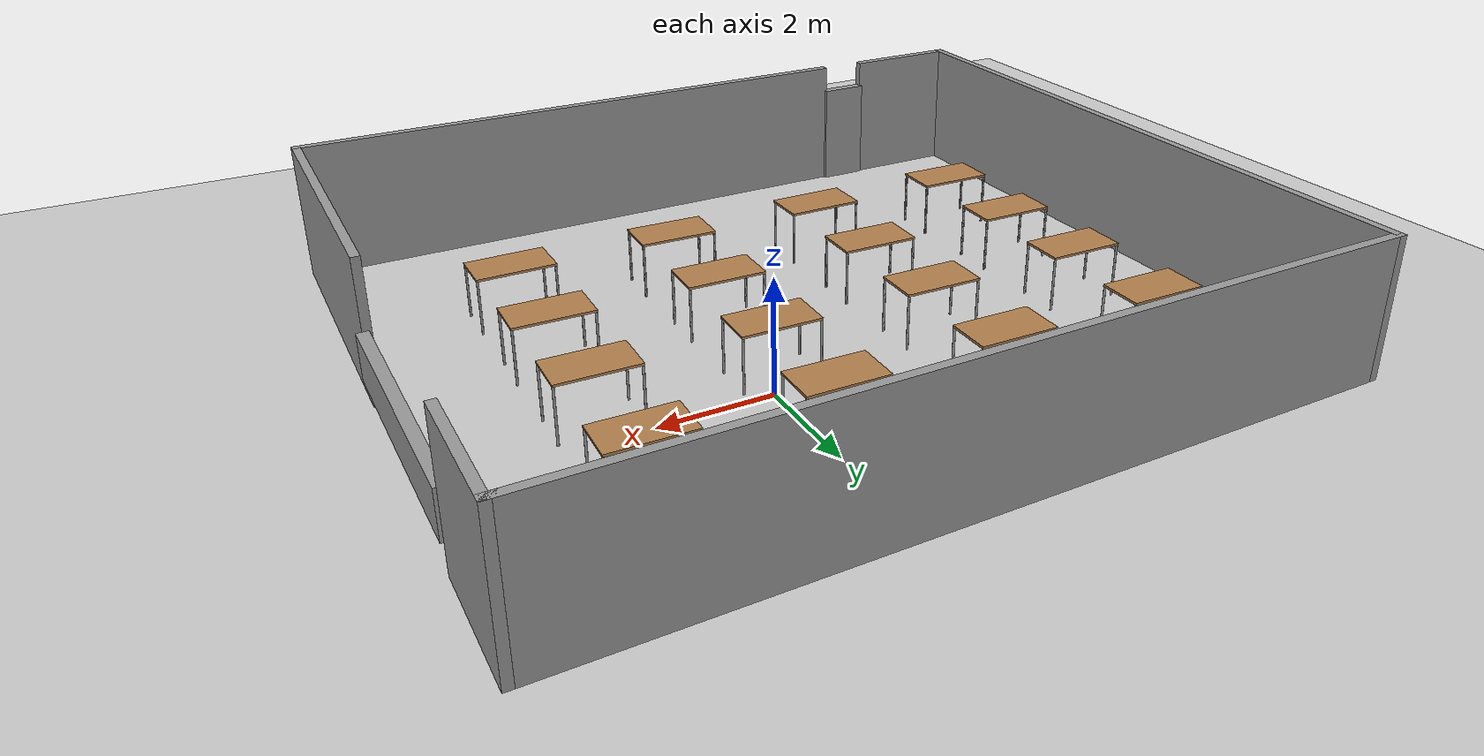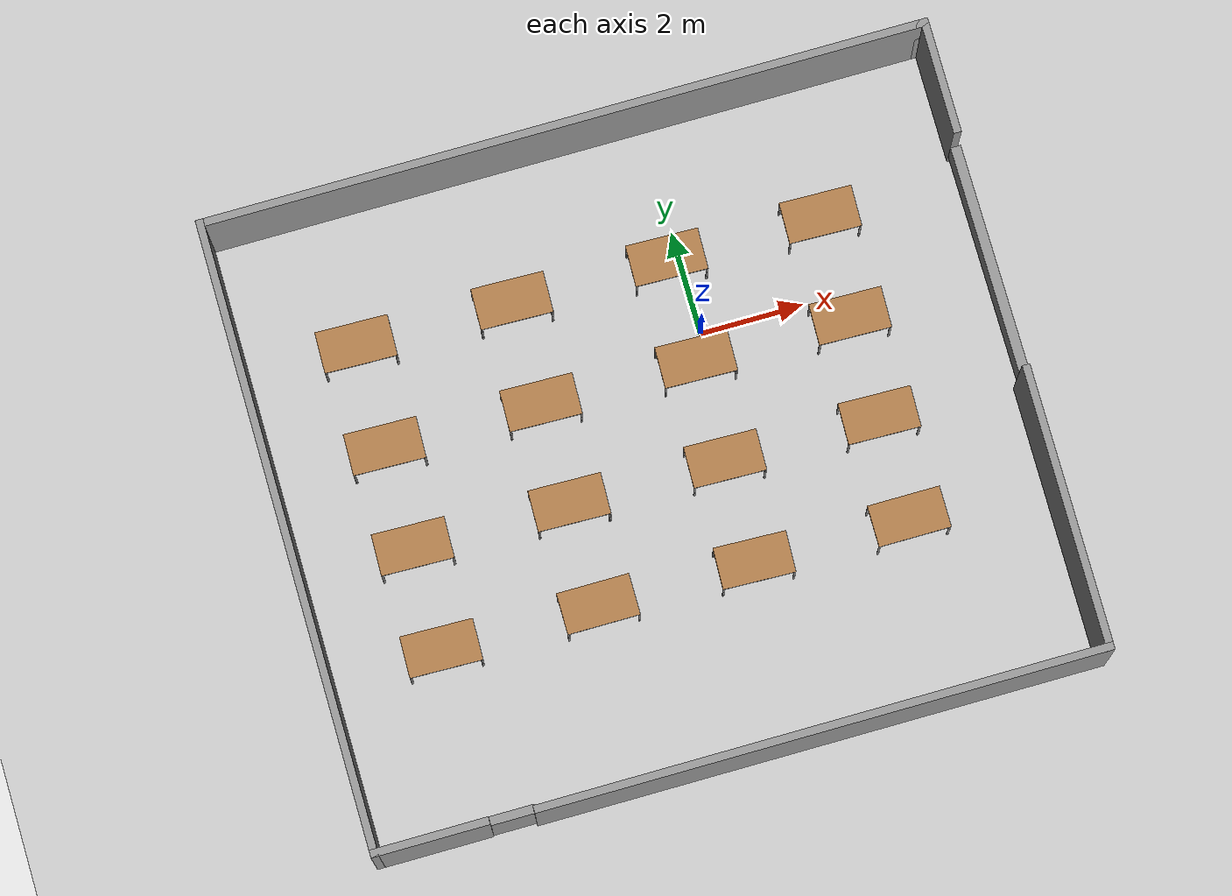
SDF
<sdf version="1.6">
 <world name="default">
  <model name="ground_plane">
   <static>1</static>
   <link name="link">
    <collision name="collision">
     <geometry><plane><normal>0 0 1</normal><size>100 100</size></plane></geometry>
     <surface><friction><ode><mu>100</mu><mu2>50</mu2></ode></friction></surface>
    </collision>
    <visual name="visual">
     <cast_shadows>0</cast_shadows>
     <geometry><plane><normal>0 0 1</normal><size>100 100</size></plane></geometry>
     <material>
      <script><uri>file://media/materials/scripts/gazebo.material</uri><name>Gazebo/Grey</name></script>
     </material>
    </visual>
   </link>
  </model>
  <light name="sun" type="directional">
   <pose>0 0 10 0 -0 0</pose>
   <diffuse>0.8 0.8 0.8 1</diffuse>
   <specular>0.1 0.1 0.1 1</specular>
   <attenuation>
    <range>1000</range>
    <constant>0.9</constant>
    <linear>0.01</linear>
    <quadratic>0.001</quadratic>
   </attenuation>
   <direction>-0.5 0.5 -1</direction>
  </light>
  <gravity>0 0 -9.8</gravity>
  <magnetic_field>6e-06 2.3e-05 -4.2e-05</magnetic_field>
  <atmosphere type="adiabatic"/>
  <physics name="default_physics" default="0" type="ode">
   <max_step_size>0.001</max_step_size>
   <real_time_factor>1</real_time_factor>
   <real_time_update_rate>1000</real_time_update_rate>
  </physics>
  <scene><ambient>0.4 0.4 0.4 1</ambient><background>0.7 0.7 0.7 1</background><shadows>1</shadows></scene>
  <spherical_coordinates>
   <surface_model>EARTH_WGS84</surface_model>
   <latitude_deg>0</latitude_deg>
   <longitude_deg>0</longitude_deg>
   <elevation>0</elevation>
   <heading_deg>0</heading_deg>
  </spherical_coordinates>
  <model name="table">
   <static>0</static>
   <link name="link">
    <collision name="surface">
     <pose>0 0 1 0 -0 0</pose>
     <geometry><box><size>1.5 0.8 0.03</size></box></geometry>
     <surface><friction><ode><mu>0.6</mu><mu2>0.6</mu2></ode></friction></surface>
    </collision>
    <visual name="visual1">
     <pose>0 0 1 0 -0 0</pose>
     <geometry><box><size>1.4 0.8 0.04</size></box></geometry>
     <material>
      <script><uri>file://media/materials/scripts/gazebo.material</uri><name>Gazebo/Wood</name></script>
     </material>
    </visual>
    <collision name="front_left_leg">
     <pose>0.68 0.38 0.5 0 -0 0</pose>
     <geometry><cylinder><radius>0.02</radius><length>1</length></cylinder></geometry>
    </collision>
    <visual name="front_left_leg">
     <pose>0.68 0.38 0.5 0 -0 0</pose>
     <geometry><cylinder><radius>0.02</radius><length>1</length></cylinder></geometry>
     <material>
      <script><uri>file://media/materials/scripts/gazebo.material</uri><name>Gazebo/Grey</name></script>
     </material>
    </visual>
    <collision name="front_right_leg">
     <pose>0.68 -0.38 0.5 0 -0 0</pose>
     <geometry><cylinder><radius>0.02</radius><length>1</length></cylinder></geometry>
    </collision>
    <visual name="front_right_leg">
     <pose>0.68 -0.38 0.5 0 -0 0</pose>
     <geometry><cylinder><radius>0.02</radius><length>1</length></cylinder></geometry>
     <material>
      <script><uri>file://media/materials/scripts/gazebo.material</uri><name>Gazebo/Grey</name></script>
     </material>
    </visual>
    <collision name="back_right_leg">
     <pose>-0.68 -0.38 0.5 0 -0 0</pose>
     <geometry><cylinder><radius>0.02</radius><length>1</length></cylinder></geometry>
    </collision>
    <visual name="back_right_leg">
     <pose>-0.68 -0.38 0.5 0 -0 0</pose>
     <geometry><cylinder><radius>0.02</radius><length>1</length></cylinder></geometry>
     <material>
      <script><uri>file://media/materials/scripts/gazebo.material</uri><name>Gazebo/Grey</name></script>
     </material>
    </visual>
    <collision name="back_left_leg">
     <pose>-0.68 0.38 0.5 0 -0 0</pose>
     <geometry><cylinder><radius>0.02</radius><length>1</length></cylinder></geometry>
    </collision>
    <visual name="back_left_leg">
     <pose>-0.68 0.38 0.5 0 -0 0</pose>
     <geometry><cylinder><radius>0.02</radius><length>1</length></cylinder></geometry>
     <material>
      <script><uri>file://media/materials/scripts/gazebo.material</uri><name>Gazebo/Grey</name></script>
     </material>
    </visual>
    <inertial>
     <inertia><ixx>1</ixx><ixy>0</ixy><ixz>0</ixz><iyy>1</iyy><iyz>0</iyz><izz>1</izz></inertia>
     <mass>1</mass>
    </inertial>
   </link>
   <pose>-6.3076 -4.55404 -1e-06 -0 1e-06 -0.023937</pose>
  </model>
  <model name="table_clone">
   <static>0</static>
   <link name="link">
    <collision name="surface">
     <pose>0 0 1 0 -0 0</pose>
     <geometry><box><size>1.5 0.8 0.03</size></box></geometry>
     <surface><friction><ode><mu>0.6</mu><mu2>0.6</mu2></ode></friction></surface>
    </collision>
    <visual name="visual1">
     <pose>0 0 1 0 -0 0</pose>
     <geometry><box><size>1.4 0.8 0.04</size></box></geometry>
     <material>
      <script><uri>file://media/materials/scripts/gazebo.material</uri><name>Gazebo/Wood</name></script>
     </material>
    </visual>
    <collision name="front_left_leg">
     <pose>0.68 0.38 0.5 0 -0 0</pose>
     <geometry><cylinder><radius>0.02</radius><length>1</length></cylinder></geometry>
    </collision>
    <visual name="front_left_leg">
     <pose>0.68 0.38 0.5 0 -0 0</pose>
     <geometry><cylinder><radius>0.02</radius><length>1</length></cylinder></geometry>
     <material>
      <script><uri>file://media/materials/scripts/gazebo.material</uri><name>Gazebo/Grey</name></script>
     </material>
    </visual>
    <collision name="front_right_leg">
     <pose>0.68 -0.38 0.5 0 -0 0</pose>
     <geometry><cylinder><radius>0.02</radius><length>1</length></cylinder></geometry>
    </collision>
    <visual name="front_right_leg">
     <pose>0.68 -0.38 0.5 0 -0 0</pose>
     <geometry><cylinder><radius>0.02</radius><length>1</length></cylinder></geometry>
     <material>
      <script><uri>file://media/materials/scripts/gazebo.material</uri><name>Gazebo/Grey</name></script>
     </material>
    </visual>
    <collision name="back_right_leg">
     <pose>-0.68 -0.38 0.5 0 -0 0</pose>
     <geometry><cylinder><radius>0.02</radius><length>1</length></cylinder></geometry>
    </collision>
    <visual name="back_right_leg">
     <pose>-0.68 -0.38 0.5 0 -0 0</pose>
     <geometry><cylinder><radius>0.02</radius><length>1</length></cylinder></geometry>
     <material>
      <script><uri>file://media/materials/scripts/gazebo.material</uri><name>Gazebo/Grey</name></script>
     </material>
    </visual>
    <collision name="back_left_leg">
     <pose>-0.68 0.38 0.5 0 -0 0</pose>
     <geometry><cylinder><radius>0.02</radius><length>1</length></cylinder></geometry>
    </collision>
    <visual name="back_left_leg">
     <pose>-0.68 0.38 0.5 0 -0 0</pose>
     <geometry><cylinder><radius>0.02</radius><length>1</length></cylinder></geometry>
     <material>
      <script><uri>file://media/materials/scripts/gazebo.material</uri><name>Gazebo/Grey</name></script>
     </material>
    </visual>
    <inertial>
     <inertia><ixx>1</ixx><ixy>0</ixy><ixz>0</ixz><iyy>1</iyy><iyz>0</iyz><izz>1</izz></inertia>
     <mass>1</mass>
    </inertial>
   </link>
   <pose>-3.28473 -4.55404 -1e-06 0 1e-06 0</pose>
  </model>
  <model name="table_clone_0">
   <static>0</static>
   <link name="link">
    <collision name="surface">
     <pose>0 0 1 0 -0 0</pose>
     <geometry><box><size>1.5 0.8 0.03</size></box></geometry>
     <surface><friction><ode><mu>0.6</mu><mu2>0.6</mu2></ode></friction></surface>
    </collision>
    <visual name="visual1">
     <pose>0 0 1 0 -0 0</pose>
     <geometry><box><size>1.4 0.8 0.04</size></box></geometry>
     <material>
      <script><uri>file://media/materials/scripts/gazebo.material</uri><name>Gazebo/Wood</name></script>
     </material>
    </visual>
    <collision name="front_left_leg">
     <pose>0.68 0.38 0.5 0 -0 0</pose>
     <geometry><cylinder><radius>0.02</radius><length>1</length></cylinder></geometry>
    </collision>
    <visual name="front_left_leg">
     <pose>0.68 0.38 0.5 0 -0 0</pose>
     <geometry><cylinder><radius>0.02</radius><length>1</length></cylinder></geometry>
     <material>
      <script><uri>file://media/materials/scripts/gazebo.material</uri><name>Gazebo/Grey</name></script>
     </material>
    </visual>
    <collision name="front_right_leg">
     <pose>0.68 -0.38 0.5 0 -0 0</pose>
     <geometry><cylinder><radius>0.02</radius><length>1</length></cylinder></geometry>
    </collision>
    <visual name="front_right_leg">
     <pose>0.68 -0.38 0.5 0 -0 0</pose>
     <geometry><cylinder><radius>0.02</radius><length>1</length></cylinder></geometry>
     <material>
      <script><uri>file://media/materials/scripts/gazebo.material</uri><name>Gazebo/Grey</name></script>
     </material>
    </visual>
    <collision name="back_right_leg">
     <pose>-0.68 -0.38 0.5 0 -0 0</pose>
     <geometry><cylinder><radius>0.02</radius><length>1</length></cylinder></geometry>
    </collision>
    <visual name="back_right_leg">
     <pose>-0.68 -0.38 0.5 0 -0 0</pose>
     <geometry><cylinder><radius>0.02</radius><length>1</length></cylinder></geometry>
     <material>
      <script><uri>file://media/materials/scripts/gazebo.material</uri><name>Gazebo/Grey</name></script>
     </material>
    </visual>
    <collision name="back_left_leg">
     <pose>-0.68 0.38 0.5 0 -0 0</pose>
     <geometry><cylinder><radius>0.02</radius><length>1</length></cylinder></geometry>
    </collision>
    <visual name="back_left_leg">
     <pose>-0.68 0.38 0.5 0 -0 0</pose>
     <geometry><cylinder><radius>0.02</radius><length>1</length></cylinder></geometry>
     <material>
      <script><uri>file://media/materials/scripts/gazebo.material</uri><name>Gazebo/Grey</name></script>
     </material>
    </visual>
    <inertial>
     <inertia><ixx>1</ixx><ixy>0</ixy><ixz>0</ixz><iyy>1</iyy><iyz>0</iyz><izz>1</izz></inertia>
     <mass>1</mass>
    </inertial>
   </link>
   <pose>-0.274301 -4.55404 -2e-06 0 0 -0.035573</pose>
  </model>
  <model name="table_clone_1">
   <static>0</static>
   <link name="link">
    <collision name="surface">
     <pose>0 0 1 0 -0 0</pose>
     <geometry><box><size>1.5 0.8 0.03</size></box></geometry>
     <surface><friction><ode><mu>0.6</mu><mu2>0.6</mu2></ode></friction></surface>
    </collision>
    <visual name="visual1">
     <pose>0 0 1 0 -0 0</pose>
     <geometry><box><size>1.4 0.8 0.04</size></box></geometry>
     <material>
      <script><uri>file://media/materials/scripts/gazebo.material</uri><name>Gazebo/Wood</name></script>
     </material>
    </visual>
    <collision name="front_left_leg">
     <pose>0.68 0.38 0.5 0 -0 0</pose>
     <geometry><cylinder><radius>0.02</radius><length>1</length></cylinder></geometry>
    </collision>
    <visual name="front_left_leg">
     <pose>0.68 0.38 0.5 0 -0 0</pose>
     <geometry><cylinder><radius>0.02</radius><length>1</length></cylinder></geometry>
     <material>
      <script><uri>file://media/materials/scripts/gazebo.material</uri><name>Gazebo/Grey</name></script>
     </material>
    </visual>
    <collision name="front_right_leg">
     <pose>0.68 -0.38 0.5 0 -0 0</pose>
     <geometry><cylinder><radius>0.02</radius><length>1</length></cylinder></geometry>
    </collision>
    <visual name="front_right_leg">
     <pose>0.68 -0.38 0.5 0 -0 0</pose>
     <geometry><cylinder><radius>0.02</radius><length>1</length></cylinder></geometry>
     <material>
      <script><uri>file://media/materials/scripts/gazebo.material</uri><name>Gazebo/Grey</name></script>
     </material>
    </visual>
    <collision name="back_right_leg">
     <pose>-0.68 -0.38 0.5 0 -0 0</pose>
     <geometry><cylinder><radius>0.02</radius><length>1</length></cylinder></geometry>
    </collision>
    <visual name="back_right_leg">
     <pose>-0.68 -0.38 0.5 0 -0 0</pose>
     <geometry><cylinder><radius>0.02</radius><length>1</length></cylinder></geometry>
     <material>
      <script><uri>file://media/materials/scripts/gazebo.material</uri><name>Gazebo/Grey</name></script>
     </material>
    </visual>
    <collision name="back_left_leg">
     <pose>-0.68 0.38 0.5 0 -0 0</pose>
     <geometry><cylinder><radius>0.02</radius><length>1</length></cylinder></geometry>
    </collision>
    <visual name="back_left_leg">
     <pose>-0.68 0.38 0.5 0 -0 0</pose>
     <geometry><cylinder><radius>0.02</radius><length>1</length></cylinder></geometry>
     <material>
      <script><uri>file://media/materials/scripts/gazebo.material</uri><name>Gazebo/Grey</name></script>
     </material>
    </visual>
    <inertial>
     <inertia><ixx>1</ixx><ixy>0</ixy><ixz>0</ixz><iyy>1</iyy><iyz>0</iyz><izz>1</izz></inertia>
     <mass>1</mass>
    </inertial>
   </link>
   <pose>2.7209 -4.55404 -1e-06 0 1e-06 0</pose>
  </model>
  <model name="table_clone_2">
   <static>0</static>
   <link name="link">
    <collision name="surface">
     <pose>0 0 1 0 -0 0</pose>
     <geometry><box><size>1.5 0.8 0.03</size></box></geometry>
     <surface><friction><ode><mu>0.6</mu><mu2>0.6</mu2></ode></friction></surface>
    </collision>
    <visual name="visual1">
     <pose>0 0 1 0 -0 0</pose>
     <geometry><box><size>1.4 0.8 0.04</size></box></geometry>
     <material>
      <script><uri>file://media/materials/scripts/gazebo.material</uri><name>Gazebo/Wood</name></script>
     </material>
    </visual>
    <collision name="front_left_leg">
     <pose>0.68 0.38 0.5 0 -0 0</pose>
     <geometry><cylinder><radius>0.02</radius><length>1</length></cylinder></geometry>
    </collision>
    <visual name="front_left_leg">
     <pose>0.68 0.38 0.5 0 -0 0</pose>
     <geometry><cylinder><radius>0.02</radius><length>1</length></cylinder></geometry>
     <material>
      <script><uri>file://media/materials/scripts/gazebo.material</uri><name>Gazebo/Grey</name></script>
     </material>
    </visual>
    <collision name="front_right_leg">
     <pose>0.68 -0.38 0.5 0 -0 0</pose>
     <geometry><cylinder><radius>0.02</radius><length>1</length></cylinder></geometry>
    </collision>
    <visual name="front_right_leg">
     <pose>0.68 -0.38 0.5 0 -0 0</pose>
     <geometry><cylinder><radius>0.02</radius><length>1</length></cylinder></geometry>
     <material>
      <script><uri>file://media/materials/scripts/gazebo.material</uri><name>Gazebo/Grey</name></script>
     </material>
    </visual>
    <collision name="back_right_leg">
     <pose>-0.68 -0.38 0.5 0 -0 0</pose>
     <geometry><cylinder><radius>0.02</radius><length>1</length></cylinder></geometry>
    </collision>
    <visual name="back_right_leg">
     <pose>-0.68 -0.38 0.5 0 -0 0</pose>
     <geometry><cylinder><radius>0.02</radius><length>1</length></cylinder></geometry>
     <material>
      <script><uri>file://media/materials/scripts/gazebo.material</uri><name>Gazebo/Grey</name></script>
     </material>
    </visual>
    <collision name="back_left_leg">
     <pose>-0.68 0.38 0.5 0 -0 0</pose>
     <geometry><cylinder><radius>0.02</radius><length>1</length></cylinder></geometry>
    </collision>
    <visual name="back_left_leg">
     <pose>-0.68 0.38 0.5 0 -0 0</pose>
     <geometry><cylinder><radius>0.02</radius><length>1</length></cylinder></geometry>
     <material>
      <script><uri>file://media/materials/scripts/gazebo.material</uri><name>Gazebo/Grey</name></script>
     </material>
    </visual>
    <inertial>
     <inertia><ixx>1</ixx><ixy>0</ixy><ixz>0</ixz><iyy>1</iyy><iyz>0</iyz><izz>1</izz></inertia>
     <mass>1</mass>
    </inertial>
   </link>
   <pose>-6.3076 -2.57049 -1e-06 -0 1e-06 -0.023937</pose>
  </model>
  <model name="table_clone_3">
   <static>0</static>
   <link name="link">
    <collision name="surface">
     <pose>0 0 1 0 -0 0</pose>
     <geometry><box><size>1.5 0.8 0.03</size></box></geometry>
     <surface><friction><ode><mu>0.6</mu><mu2>0.6</mu2></ode></friction></surface>
    </collision>
    <visual name="visual1">
     <pose>0 0 1 0 -0 0</pose>
     <geometry><box><size>1.4 0.8 0.04</size></box></geometry>
     <material>
      <script><uri>file://media/materials/scripts/gazebo.material</uri><name>Gazebo/Wood</name></script>
     </material>
    </visual>
    <collision name="front_left_leg">
     <pose>0.68 0.38 0.5 0 -0 0</pose>
     <geometry><cylinder><radius>0.02</radius><length>1</length></cylinder></geometry>
    </collision>
    <visual name="front_left_leg">
     <pose>0.68 0.38 0.5 0 -0 0</pose>
     <geometry><cylinder><radius>0.02</radius><length>1</length></cylinder></geometry>
     <material>
      <script><uri>file://media/materials/scripts/gazebo.material</uri><name>Gazebo/Grey</name></script>
     </material>
    </visual>
    <collision name="front_right_leg">
     <pose>0.68 -0.38 0.5 0 -0 0</pose>
     <geometry><cylinder><radius>0.02</radius><length>1</length></cylinder></geometry>
    </collision>
    <visual name="front_right_leg">
     <pose>0.68 -0.38 0.5 0 -0 0</pose>
     <geometry><cylinder><radius>0.02</radius><length>1</length></cylinder></geometry>
     <material>
      <script><uri>file://media/materials/scripts/gazebo.material</uri><name>Gazebo/Grey</name></script>
     </material>
    </visual>
    <collision name="back_right_leg">
     <pose>-0.68 -0.38 0.5 0 -0 0</pose>
     <geometry><cylinder><radius>0.02</radius><length>1</length></cylinder></geometry>
    </collision>
    <visual name="back_right_leg">
     <pose>-0.68 -0.38 0.5 0 -0 0</pose>
     <geometry><cylinder><radius>0.02</radius><length>1</length></cylinder></geometry>
     <material>
      <script><uri>file://media/materials/scripts/gazebo.material</uri><name>Gazebo/Grey</name></script>
     </material>
    </visual>
    <collision name="back_left_leg">
     <pose>-0.68 0.38 0.5 0 -0 0</pose>
     <geometry><cylinder><radius>0.02</radius><length>1</length></cylinder></geometry>
    </collision>
    <visual name="back_left_leg">
     <pose>-0.68 0.38 0.5 0 -0 0</pose>
     <geometry><cylinder><radius>0.02</radius><length>1</length></cylinder></geometry>
     <material>
      <script><uri>file://media/materials/scripts/gazebo.material</uri><name>Gazebo/Grey</name></script>
     </material>
    </visual>
    <inertial>
     <inertia><ixx>1</ixx><ixy>0</ixy><ixz>0</ixz><iyy>1</iyy><iyz>0</iyz><izz>1</izz></inertia>
     <mass>1</mass>
    </inertial>
   </link>
   <pose>-6.3076 -0.61259 -1e-06 -0 1e-06 -0.023937</pose>
  </model>
  <model name="table_clone_4">
   <static>0</static>
   <link name="link">
    <collision name="surface">
     <pose>0 0 1 0 -0 0</pose>
     <geometry><box><size>1.5 0.8 0.03</size></box></geometry>
     <surface><friction><ode><mu>0.6</mu><mu2>0.6</mu2></ode></friction></surface>
    </collision>
    <visual name="visual1">
     <pose>0 0 1 0 -0 0</pose>
     <geometry><box><size>1.4 0.8 0.04</size></box></geometry>
     <material>
      <script><uri>file://media/materials/scripts/gazebo.material</uri><name>Gazebo/Wood</name></script>
     </material>
    </visual>
    <collision name="front_left_leg">
     <pose>0.68 0.38 0.5 0 -0 0</pose>
     <geometry><cylinder><radius>0.02</radius><length>1</length></cylinder></geometry>
    </collision>
    <visual name="front_left_leg">
     <pose>0.68 0.38 0.5 0 -0 0</pose>
     <geometry><cylinder><radius>0.02</radius><length>1</length></cylinder></geometry>
     <material>
      <script><uri>file://media/materials/scripts/gazebo.material</uri><name>Gazebo/Grey</name></script>
     </material>
    </visual>
    <collision name="front_right_leg">
     <pose>0.68 -0.38 0.5 0 -0 0</pose>
     <geometry><cylinder><radius>0.02</radius><length>1</length></cylinder></geometry>
    </collision>
    <visual name="front_right_leg">
     <pose>0.68 -0.38 0.5 0 -0 0</pose>
     <geometry><cylinder><radius>0.02</radius><length>1</length></cylinder></geometry>
     <material>
      <script><uri>file://media/materials/scripts/gazebo.material</uri><name>Gazebo/Grey</name></script>
     </material>
    </visual>
    <collision name="back_right_leg">
     <pose>-0.68 -0.38 0.5 0 -0 0</pose>
     <geometry><cylinder><radius>0.02</radius><length>1</length></cylinder></geometry>
    </collision>
    <visual name="back_right_leg">
     <pose>-0.68 -0.38 0.5 0 -0 0</pose>
     <geometry><cylinder><radius>0.02</radius><length>1</length></cylinder></geometry>
     <material>
      <script><uri>file://media/materials/scripts/gazebo.material</uri><name>Gazebo/Grey</name></script>
     </material>
    </visual>
    <collision name="back_left_leg">
     <pose>-0.68 0.38 0.5 0 -0 0</pose>
     <geometry><cylinder><radius>0.02</radius><length>1</length></cylinder></geometry>
    </collision>
    <visual name="back_left_leg">
     <pose>-0.68 0.38 0.5 0 -0 0</pose>
     <geometry><cylinder><radius>0.02</radius><length>1</length></cylinder></geometry>
     <material>
      <script><uri>file://media/materials/scripts/gazebo.material</uri><name>Gazebo/Grey</name></script>
     </material>
    </visual>
    <inertial>
     <inertia><ixx>1</ixx><ixy>0</ixy><ixz>0</ixz><iyy>1</iyy><iyz>0</iyz><izz>1</izz></inertia>
     <mass>1</mass>
    </inertial>
   </link>
   <pose>-6.3076 1.39458 -1e-06 -0 1e-06 -0.023937</pose>
  </model>
  <model name="table_clone_4_clone">
   <static>0</static>
   <link name="link">
    <collision name="surface">
     <pose>0 0 1 0 -0 0</pose>
     <geometry><box><size>1.5 0.8 0.03</size></box></geometry>
     <surface><friction><ode><mu>0.6</mu><mu2>0.6</mu2></ode></friction></surface>
    </collision>
    <visual name="visual1">
     <pose>0 0 1 0 -0 0</pose>
     <geometry><box><size>1.4 0.8 0.04</size></box></geometry>
     <material>
      <script><uri>file://media/materials/scripts/gazebo.material</uri><name>Gazebo/Wood</name></script>
     </material>
    </visual>
    <collision name="front_left_leg">
     <pose>0.68 0.38 0.5 0 -0 0</pose>
     <geometry><cylinder><radius>0.02</radius><length>1</length></cylinder></geometry>
    </collision>
    <visual name="front_left_leg">
     <pose>0.68 0.38 0.5 0 -0 0</pose>
     <geometry><cylinder><radius>0.02</radius><length>1</length></cylinder></geometry>
     <material>
      <script><uri>file://media/materials/scripts/gazebo.material</uri><name>Gazebo/Grey</name></script>
     </material>
    </visual>
    <collision name="front_right_leg">
     <pose>0.68 -0.38 0.5 0 -0 0</pose>
     <geometry><cylinder><radius>0.02</radius><length>1</length></cylinder></geometry>
    </collision>
    <visual name="front_right_leg">
     <pose>0.68 -0.38 0.5 0 -0 0</pose>
     <geometry><cylinder><radius>0.02</radius><length>1</length></cylinder></geometry>
     <material>
      <script><uri>file://media/materials/scripts/gazebo.material</uri><name>Gazebo/Grey</name></script>
     </material>
    </visual>
    <collision name="back_right_leg">
     <pose>-0.68 -0.38 0.5 0 -0 0</pose>
     <geometry><cylinder><radius>0.02</radius><length>1</length></cylinder></geometry>
    </collision>
    <visual name="back_right_leg">
     <pose>-0.68 -0.38 0.5 0 -0 0</pose>
     <geometry><cylinder><radius>0.02</radius><length>1</length></cylinder></geometry>
     <material>
      <script><uri>file://media/materials/scripts/gazebo.material</uri><name>Gazebo/Grey</name></script>
     </material>
    </visual>
    <collision name="back_left_leg">
     <pose>-0.68 0.38 0.5 0 -0 0</pose>
     <geometry><cylinder><radius>0.02</radius><length>1</length></cylinder></geometry>
    </collision>
    <visual name="back_left_leg">
     <pose>-0.68 0.38 0.5 0 -0 0</pose>
     <geometry><cylinder><radius>0.02</radius><length>1</length></cylinder></geometry>
     <material>
      <script><uri>file://media/materials/scripts/gazebo.material</uri><name>Gazebo/Grey</name></script>
     </material>
    </visual>
    <inertial>
     <inertia><ixx>1</ixx><ixy>0</ixy><ixz>0</ixz><iyy>1</iyy><iyz>0</iyz><izz>1</izz></inertia>
     <mass>1</mass>
    </inertial>
   </link>
   <pose>-3.28473 -2.57049 -1e-06 -0 1e-06 -0.023937</pose>
  </model>
  <model name="table_clone_3_clone">
   <static>0</static>
   <link name="link">
    <collision name="surface">
     <pose>0 0 1 0 -0 0</pose>
     <geometry><box><size>1.5 0.8 0.03</size></box></geometry>
     <surface><friction><ode><mu>0.6</mu><mu2>0.6</mu2></ode></friction></surface>
    </collision>
    <visual name="visual1">
     <pose>0 0 1 0 -0 0</pose>
     <geometry><box><size>1.4 0.8 0.04</size></box></geometry>
     <material>
      <script><uri>file://media/materials/scripts/gazebo.material</uri><name>Gazebo/Wood</name></script>
     </material>
    </visual>
    <collision name="front_left_leg">
     <pose>0.68 0.38 0.5 0 -0 0</pose>
     <geometry><cylinder><radius>0.02</radius><length>1</length></cylinder></geometry>
    </collision>
    <visual name="front_left_leg">
     <pose>0.68 0.38 0.5 0 -0 0</pose>
     <geometry><cylinder><radius>0.02</radius><length>1</length></cylinder></geometry>
     <material>
      <script><uri>file://media/materials/scripts/gazebo.material</uri><name>Gazebo/Grey</name></script>
     </material>
    </visual>
    <collision name="front_right_leg">
     <pose>0.68 -0.38 0.5 0 -0 0</pose>
     <geometry><cylinder><radius>0.02</radius><length>1</length></cylinder></geometry>
    </collision>
    <visual name="front_right_leg">
     <pose>0.68 -0.38 0.5 0 -0 0</pose>
     <geometry><cylinder><radius>0.02</radius><length>1</length></cylinder></geometry>
     <material>
      <script><uri>file://media/materials/scripts/gazebo.material</uri><name>Gazebo/Grey</name></script>
     </material>
    </visual>
    <collision name="back_right_leg">
     <pose>-0.68 -0.38 0.5 0 -0 0</pose>
     <geometry><cylinder><radius>0.02</radius><length>1</length></cylinder></geometry>
    </collision>
    <visual name="back_right_leg">
     <pose>-0.68 -0.38 0.5 0 -0 0</pose>
     <geometry><cylinder><radius>0.02</radius><length>1</length></cylinder></geometry>
     <material>
      <script><uri>file://media/materials/scripts/gazebo.material</uri><name>Gazebo/Grey</name></script>
     </material>
    </visual>
    <collision name="back_left_leg">
     <pose>-0.68 0.38 0.5 0 -0 0</pose>
     <geometry><cylinder><radius>0.02</radius><length>1</length></cylinder></geometry>
    </collision>
    <visual name="back_left_leg">
     <pose>-0.68 0.38 0.5 0 -0 0</pose>
     <geometry><cylinder><radius>0.02</radius><length>1</length></cylinder></geometry>
     <material>
      <script><uri>file://media/materials/scripts/gazebo.material</uri><name>Gazebo/Grey</name></script>
     </material>
    </visual>
    <inertial>
     <inertia><ixx>1</ixx><ixy>0</ixy><ixz>0</ixz><iyy>1</iyy><iyz>0</iyz><izz>1</izz></inertia>
     <mass>1</mass>
    </inertial>
   </link>
   <pose>-3.28473 -0.61259 -1e-06 -0 1e-06 -0.023937</pose>
  </model>
  <model name="table_clone_3_clone_0">
   <static>0</static>
   <link name="link">
    <collision name="surface">
     <pose>0 0 1 0 -0 0</pose>
     <geometry><box><size>1.5 0.8 0.03</size></box></geometry>
     <surface><friction><ode><mu>0.6</mu><mu2>0.6</mu2></ode></friction></surface>
    </collision>
    <visual name="visual1">
     <pose>0 0 1 0 -0 0</pose>
     <geometry><box><size>1.4 0.8 0.04</size></box></geometry>
     <material>
      <script><uri>file://media/materials/scripts/gazebo.material</uri><name>Gazebo/Wood</name></script>
     </material>
    </visual>
    <collision name="front_left_leg">
     <pose>0.68 0.38 0.5 0 -0 0</pose>
     <geometry><cylinder><radius>0.02</radius><length>1</length></cylinder></geometry>
    </collision>
    <visual name="front_left_leg">
     <pose>0.68 0.38 0.5 0 -0 0</pose>
     <geometry><cylinder><radius>0.02</radius><length>1</length></cylinder></geometry>
     <material>
      <script><uri>file://media/materials/scripts/gazebo.material</uri><name>Gazebo/Grey</name></script>
     </material>
    </visual>
    <collision name="front_right_leg">
     <pose>0.68 -0.38 0.5 0 -0 0</pose>
     <geometry><cylinder><radius>0.02</radius><length>1</length></cylinder></geometry>
    </collision>
    <visual name="front_right_leg">
     <pose>0.68 -0.38 0.5 0 -0 0</pose>
     <geometry><cylinder><radius>0.02</radius><length>1</length></cylinder></geometry>
     <material>
      <script><uri>file://media/materials/scripts/gazebo.material</uri><name>Gazebo/Grey</name></script>
     </material>
    </visual>
    <collision name="back_right_leg">
     <pose>-0.68 -0.38 0.5 0 -0 0</pose>
     <geometry><cylinder><radius>0.02</radius><length>1</length></cylinder></geometry>
    </collision>
    <visual name="back_right_leg">
     <pose>-0.68 -0.38 0.5 0 -0 0</pose>
     <geometry><cylinder><radius>0.02</radius><length>1</length></cylinder></geometry>
     <material>
      <script><uri>file://media/materials/scripts/gazebo.material</uri><name>Gazebo/Grey</name></script>
     </material>
    </visual>
    <collision name="back_left_leg">
     <pose>-0.68 0.38 0.5 0 -0 0</pose>
     <geometry><cylinder><radius>0.02</radius><length>1</length></cylinder></geometry>
    </collision>
    <visual name="back_left_leg">
     <pose>-0.68 0.38 0.5 0 -0 0</pose>
     <geometry><cylinder><radius>0.02</radius><length>1</length></cylinder></geometry>
     <material>
      <script><uri>file://media/materials/scripts/gazebo.material</uri><name>Gazebo/Grey</name></script>
     </material>
    </visual>
    <inertial>
     <inertia><ixx>1</ixx><ixy>0</ixy><ixz>0</ixz><iyy>1</iyy><iyz>0</iyz><izz>1</izz></inertia>
     <mass>1</mass>
    </inertial>
   </link>
   <pose>-3.28473 1.39458 -1e-06 -0 1e-06 -0.023937</pose>
  </model>
  <model name="table_clone_3_clone_1">
   <static>0</static>
   <link name="link">
    <collision name="surface">
     <pose>0 0 1 0 -0 0</pose>
     <geometry><box><size>1.5 0.8 0.03</size></box></geometry>
     <surface><friction><ode><mu>0.6</mu><mu2>0.6</mu2></ode></friction></surface>
    </collision>
    <visual name="visual1">
     <pose>0 0 1 0 -0 0</pose>
     <geometry><box><size>1.4 0.8 0.04</size></box></geometry>
     <material>
      <script><uri>file://media/materials/scripts/gazebo.material</uri><name>Gazebo/Wood</name></script>
     </material>
    </visual>
    <collision name="front_left_leg">
     <pose>0.68 0.38 0.5 0 -0 0</pose>
     <geometry><cylinder><radius>0.02</radius><length>1</length></cylinder></geometry>
    </collision>
    <visual name="front_left_leg">
     <pose>0.68 0.38 0.5 0 -0 0</pose>
     <geometry><cylinder><radius>0.02</radius><length>1</length></cylinder></geometry>
     <material>
      <script><uri>file://media/materials/scripts/gazebo.material</uri><name>Gazebo/Grey</name></script>
     </material>
    </visual>
    <collision name="front_right_leg">
     <pose>0.68 -0.38 0.5 0 -0 0</pose>
     <geometry><cylinder><radius>0.02</radius><length>1</length></cylinder></geometry>
    </collision>
    <visual name="front_right_leg">
     <pose>0.68 -0.38 0.5 0 -0 0</pose>
     <geometry><cylinder><radius>0.02</radius><length>1</length></cylinder></geometry>
     <material>
      <script><uri>file://media/materials/scripts/gazebo.material</uri><name>Gazebo/Grey</name></script>
     </material>
    </visual>
    <collision name="back_right_leg">
     <pose>-0.68 -0.38 0.5 0 -0 0</pose>
     <geometry><cylinder><radius>0.02</radius><length>1</length></cylinder></geometry>
    </collision>
    <visual name="back_right_leg">
     <pose>-0.68 -0.38 0.5 0 -0 0</pose>
     <geometry><cylinder><radius>0.02</radius><length>1</length></cylinder></geometry>
     <material>
      <script><uri>file://media/materials/scripts/gazebo.material</uri><name>Gazebo/Grey</name></script>
     </material>
    </visual>
    <collision name="back_left_leg">
     <pose>-0.68 0.38 0.5 0 -0 0</pose>
     <geometry><cylinder><radius>0.02</radius><length>1</length></cylinder></geometry>
    </collision>
    <visual name="back_left_leg">
     <pose>-0.68 0.38 0.5 0 -0 0</pose>
     <geometry><cylinder><radius>0.02</radius><length>1</length></cylinder></geometry>
     <material>
      <script><uri>file://media/materials/scripts/gazebo.material</uri><name>Gazebo/Grey</name></script>
     </material>
    </visual>
    <inertial>
     <inertia><ixx>1</ixx><ixy>0</ixy><ixz>0</ixz><iyy>1</iyy><iyz>0</iyz><izz>1</izz></inertia>
     <mass>1</mass>
    </inertial>
   </link>
   <pose>-0.274302 -2.57049 -1e-06 -0 1e-06 -0.023937</pose>
  </model>
  <model name="table_clone_3_clone_2">
   <static>0</static>
   <link name="link">
    <collision name="surface">
     <pose>0 0 1 0 -0 0</pose>
     <geometry><box><size>1.5 0.8 0.03</size></box></geometry>
     <surface><friction><ode><mu>0.6</mu><mu2>0.6</mu2></ode></friction></surface>
    </collision>
    <visual name="visual1">
     <pose>0 0 1 0 -0 0</pose>
     <geometry><box><size>1.4 0.8 0.04</size></box></geometry>
     <material>
      <script><uri>file://media/materials/scripts/gazebo.material</uri><name>Gazebo/Wood</name></script>
     </material>
    </visual>
    <collision name="front_left_leg">
     <pose>0.68 0.38 0.5 0 -0 0</pose>
     <geometry><cylinder><radius>0.02</radius><length>1</length></cylinder></geometry>
    </collision>
    <visual name="front_left_leg">
     <pose>0.68 0.38 0.5 0 -0 0</pose>
     <geometry><cylinder><radius>0.02</radius><length>1</length></cylinder></geometry>
     <material>
      <script><uri>file://media/materials/scripts/gazebo.material</uri><name>Gazebo/Grey</name></script>
     </material>
    </visual>
    <collision name="front_right_leg">
     <pose>0.68 -0.38 0.5 0 -0 0</pose>
     <geometry><cylinder><radius>0.02</radius><length>1</length></cylinder></geometry>
    </collision>
    <visual name="front_right_leg">
     <pose>0.68 -0.38 0.5 0 -0 0</pose>
     <geometry><cylinder><radius>0.02</radius><length>1</length></cylinder></geometry>
     <material>
      <script><uri>file://media/materials/scripts/gazebo.material</uri><name>Gazebo/Grey</name></script>
     </material>
    </visual>
    <collision name="back_right_leg">
     <pose>-0.68 -0.38 0.5 0 -0 0</pose>
     <geometry><cylinder><radius>0.02</radius><length>1</length></cylinder></geometry>
    </collision>
    <visual name="back_right_leg">
     <pose>-0.68 -0.38 0.5 0 -0 0</pose>
     <geometry><cylinder><radius>0.02</radius><length>1</length></cylinder></geometry>
     <material>
      <script><uri>file://media/materials/scripts/gazebo.material</uri><name>Gazebo/Grey</name></script>
     </material>
    </visual>
    <collision name="back_left_leg">
     <pose>-0.68 0.38 0.5 0 -0 0</pose>
     <geometry><cylinder><radius>0.02</radius><length>1</length></cylinder></geometry>
    </collision>
    <visual name="back_left_leg">
     <pose>-0.68 0.38 0.5 0 -0 0</pose>
     <geometry><cylinder><radius>0.02</radius><length>1</length></cylinder></geometry>
     <material>
      <script><uri>file://media/materials/scripts/gazebo.material</uri><name>Gazebo/Grey</name></script>
     </material>
    </visual>
    <inertial>
     <inertia><ixx>1</ixx><ixy>0</ixy><ixz>0</ixz><iyy>1</iyy><iyz>0</iyz><izz>1</izz></inertia>
     <mass>1</mass>
    </inertial>
   </link>
   <pose>-0.274302 -0.61259 -1e-06 -0 1e-06 -0.023937</pose>
  </model>
  <model name="table_clone_3_clone_3">
   <static>0</static>
   <link name="link">
    <collision name="surface">
     <pose>0 0 1 0 -0 0</pose>
     <geometry><box><size>1.5 0.8 0.03</size></box></geometry>
     <surface><friction><ode><mu>0.6</mu><mu2>0.6</mu2></ode></friction></surface>
    </collision>
    <visual name="visual1">
     <pose>0 0 1 0 -0 0</pose>
     <geometry><box><size>1.4 0.8 0.04</size></box></geometry>
     <material>
      <script><uri>file://media/materials/scripts/gazebo.material</uri><name>Gazebo/Wood</name></script>
     </material>
    </visual>
    <collision name="front_left_leg">
     <pose>0.68 0.38 0.5 0 -0 0</pose>
     <geometry><cylinder><radius>0.02</radius><length>1</length></cylinder></geometry>
    </collision>
    <visual name="front_left_leg">
     <pose>0.68 0.38 0.5 0 -0 0</pose>
     <geometry><cylinder><radius>0.02</radius><length>1</length></cylinder></geometry>
     <material>
      <script><uri>file://media/materials/scripts/gazebo.material</uri><name>Gazebo/Grey</name></script>
     </material>
    </visual>
    <collision name="front_right_leg">
     <pose>0.68 -0.38 0.5 0 -0 0</pose>
     <geometry><cylinder><radius>0.02</radius><length>1</length></cylinder></geometry>
    </collision>
    <visual name="front_right_leg">
     <pose>0.68 -0.38 0.5 0 -0 0</pose>
     <geometry><cylinder><radius>0.02</radius><length>1</length></cylinder></geometry>
     <material>
      <script><uri>file://media/materials/scripts/gazebo.material</uri><name>Gazebo/Grey</name></script>
     </material>
    </visual>
    <collision name="back_right_leg">
     <pose>-0.68 -0.38 0.5 0 -0 0</pose>
     <geometry><cylinder><radius>0.02</radius><length>1</length></cylinder></geometry>
    </collision>
    <visual name="back_right_leg">
     <pose>-0.68 -0.38 0.5 0 -0 0</pose>
     <geometry><cylinder><radius>0.02</radius><length>1</length></cylinder></geometry>
     <material>
      <script><uri>file://media/materials/scripts/gazebo.material</uri><name>Gazebo/Grey</name></script>
     </material>
    </visual>
    <collision name="back_left_leg">
     <pose>-0.68 0.38 0.5 0 -0 0</pose>
     <geometry><cylinder><radius>0.02</radius><length>1</length></cylinder></geometry>
    </collision>
    <visual name="back_left_leg">
     <pose>-0.68 0.38 0.5 0 -0 0</pose>
     <geometry><cylinder><radius>0.02</radius><length>1</length></cylinder></geometry>
     <material>
      <script><uri>file://media/materials/scripts/gazebo.material</uri><name>Gazebo/Grey</name></script>
     </material>
    </visual>
    <inertial>
     <inertia><ixx>1</ixx><ixy>0</ixy><ixz>0</ixz><iyy>1</iyy><iyz>0</iyz><izz>1</izz></inertia>
     <mass>1</mass>
    </inertial>
   </link>
   <pose>-0.274302 1.39458 -1e-06 -0 1e-06 -0.023937</pose>
  </model>
  <model name="table_clone_3_clone_4">
   <static>0</static>
   <link name="link">
    <collision name="surface">
     <pose>0 0 1 0 -0 0</pose>
     <geometry><box><size>1.5 0.8 0.03</size></box></geometry>
     <surface><friction><ode><mu>0.6</mu><mu2>0.6</mu2></ode></friction></surface>
    </collision>
    <visual name="visual1">
     <pose>0 0 1 0 -0 0</pose>
     <geometry><box><size>1.4 0.8 0.04</size></box></geometry>
     <material>
      <script><uri>file://media/materials/scripts/gazebo.material</uri><name>Gazebo/Wood</name></script>
     </material>
    </visual>
    <collision name="front_left_leg">
     <pose>0.68 0.38 0.5 0 -0 0</pose>
     <geometry><cylinder><radius>0.02</radius><length>1</length></cylinder></geometry>
    </collision>
    <visual name="front_left_leg">
     <pose>0.68 0.38 0.5 0 -0 0</pose>
     <geometry><cylinder><radius>0.02</radius><length>1</length></cylinder></geometry>
     <material>
      <script><uri>file://media/materials/scripts/gazebo.material</uri><name>Gazebo/Grey</name></script>
     </material>
    </visual>
    <collision name="front_right_leg">
     <pose>0.68 -0.38 0.5 0 -0 0</pose>
     <geometry><cylinder><radius>0.02</radius><length>1</length></cylinder></geometry>
    </collision>
    <visual name="front_right_leg">
     <pose>0.68 -0.38 0.5 0 -0 0</pose>
     <geometry><cylinder><radius>0.02</radius><length>1</length></cylinder></geometry>
     <material>
      <script><uri>file://media/materials/scripts/gazebo.material</uri><name>Gazebo/Grey</name></script>
     </material>
    </visual>
    <collision name="back_right_leg">
     <pose>-0.68 -0.38 0.5 0 -0 0</pose>
     <geometry><cylinder><radius>0.02</radius><length>1</length></cylinder></geometry>
    </collision>
    <visual name="back_right_leg">
     <pose>-0.68 -0.38 0.5 0 -0 0</pose>
     <geometry><cylinder><radius>0.02</radius><length>1</length></cylinder></geometry>
     <material>
      <script><uri>file://media/materials/scripts/gazebo.material</uri><name>Gazebo/Grey</name></script>
     </material>
    </visual>
    <collision name="back_left_leg">
     <pose>-0.68 0.38 0.5 0 -0 0</pose>
     <geometry><cylinder><radius>0.02</radius><length>1</length></cylinder></geometry>
    </collision>
    <visual name="back_left_leg">
     <pose>-0.68 0.38 0.5 0 -0 0</pose>
     <geometry><cylinder><radius>0.02</radius><length>1</length></cylinder></geometry>
     <material>
      <script><uri>file://media/materials/scripts/gazebo.material</uri><name>Gazebo/Grey</name></script>
     </material>
    </visual>
    <inertial>
     <inertia><ixx>1</ixx><ixy>0</ixy><ixz>0</ixz><iyy>1</iyy><iyz>0</iyz><izz>1</izz></inertia>
     <mass>1</mass>
    </inertial>
   </link>
   <pose>2.7209 -2.57049 -1e-06 -0 1e-06 -0.023937</pose>
  </model>
  <model name="table_clone_3_clone_5">
   <static>0</static>
   <link name="link">
    <collision name="surface">
     <pose>0 0 1 0 -0 0</pose>
     <geometry><box><size>1.5 0.8 0.03</size></box></geometry>
     <surface><friction><ode><mu>0.6</mu><mu2>0.6</mu2></ode></friction></surface>
    </collision>
    <visual name="visual1">
     <pose>0 0 1 0 -0 0</pose>
     <geometry><box><size>1.4 0.8 0.04</size></box></geometry>
     <material>
      <script><uri>file://media/materials/scripts/gazebo.material</uri><name>Gazebo/Wood</name></script>
     </material>
    </visual>
    <collision name="front_left_leg">
     <pose>0.68 0.38 0.5 0 -0 0</pose>
     <geometry><cylinder><radius>0.02</radius><length>1</length></cylinder></geometry>
    </collision>
    <visual name="front_left_leg">
     <pose>0.68 0.38 0.5 0 -0 0</pose>
     <geometry><cylinder><radius>0.02</radius><length>1</length></cylinder></geometry>
     <material>
      <script><uri>file://media/materials/scripts/gazebo.material</uri><name>Gazebo/Grey</name></script>
     </material>
    </visual>
    <collision name="front_right_leg">
     <pose>0.68 -0.38 0.5 0 -0 0</pose>
     <geometry><cylinder><radius>0.02</radius><length>1</length></cylinder></geometry>
    </collision>
    <visual name="front_right_leg">
     <pose>0.68 -0.38 0.5 0 -0 0</pose>
     <geometry><cylinder><radius>0.02</radius><length>1</length></cylinder></geometry>
     <material>
      <script><uri>file://media/materials/scripts/gazebo.material</uri><name>Gazebo/Grey</name></script>
     </material>
    </visual>
    <collision name="back_right_leg">
     <pose>-0.68 -0.38 0.5 0 -0 0</pose>
     <geometry><cylinder><radius>0.02</radius><length>1</length></cylinder></geometry>
    </collision>
    <visual name="back_right_leg">
     <pose>-0.68 -0.38 0.5 0 -0 0</pose>
     <geometry><cylinder><radius>0.02</radius><length>1</length></cylinder></geometry>
     <material>
      <script><uri>file://media/materials/scripts/gazebo.material</uri><name>Gazebo/Grey</name></script>
     </material>
    </visual>
    <collision name="back_left_leg">
     <pose>-0.68 0.38 0.5 0 -0 0</pose>
     <geometry><cylinder><radius>0.02</radius><length>1</length></cylinder></geometry>
    </collision>
    <visual name="back_left_leg">
     <pose>-0.68 0.38 0.5 0 -0 0</pose>
     <geometry><cylinder><radius>0.02</radius><length>1</length></cylinder></geometry>
     <material>
      <script><uri>file://media/materials/scripts/gazebo.material</uri><name>Gazebo/Grey</name></script>
     </material>
    </visual>
    <inertial>
     <inertia><ixx>1</ixx><ixy>0</ixy><ixz>0</ixz><iyy>1</iyy><iyz>0</iyz><izz>1</izz></inertia>
     <mass>1</mass>
    </inertial>
   </link>
   <pose>2.7209 -0.61259 -1e-06 -0 1e-06 -0.023937</pose>
  </model>
  <model name="table_clone_3_clone_6">
   <static>0</static>
   <link name="link">
    <collision name="surface">
     <pose>0 0 1 0 -0 0</pose>
     <geometry><box><size>1.5 0.8 0.03</size></box></geometry>
     <surface><friction><ode><mu>0.6</mu><mu2>0.6</mu2></ode></friction></surface>
    </collision>
    <visual name="visual1">
     <pose>0 0 1 0 -0 0</pose>
     <geometry><box><size>1.4 0.8 0.04</size></box></geometry>
     <material>
      <script><uri>file://media/materials/scripts/gazebo.material</uri><name>Gazebo/Wood</name></script>
     </material>
    </visual>
    <collision name="front_left_leg">
     <pose>0.68 0.38 0.5 0 -0 0</pose>
     <geometry><cylinder><radius>0.02</radius><length>1</length></cylinder></geometry>
    </collision>
    <visual name="front_left_leg">
     <pose>0.68 0.38 0.5 0 -0 0</pose>
     <geometry><cylinder><radius>0.02</radius><length>1</length></cylinder></geometry>
     <material>
      <script><uri>file://media/materials/scripts/gazebo.material</uri><name>Gazebo/Grey</name></script>
     </material>
    </visual>
    <collision name="front_right_leg">
     <pose>0.68 -0.38 0.5 0 -0 0</pose>
     <geometry><cylinder><radius>0.02</radius><length>1</length></cylinder></geometry>
    </collision>
    <visual name="front_right_leg">
     <pose>0.68 -0.38 0.5 0 -0 0</pose>
     <geometry><cylinder><radius>0.02</radius><length>1</length></cylinder></geometry>
     <material>
      <script><uri>file://media/materials/scripts/gazebo.material</uri><name>Gazebo/Grey</name></script>
     </material>
    </visual>
    <collision name="back_right_leg">
     <pose>-0.68 -0.38 0.5 0 -0 0</pose>
     <geometry><cylinder><radius>0.02</radius><length>1</length></cylinder></geometry>
    </collision>
    <visual name="back_right_leg">
     <pose>-0.68 -0.38 0.5 0 -0 0</pose>
     <geometry><cylinder><radius>0.02</radius><length>1</length></cylinder></geometry>
     <material>
      <script><uri>file://media/materials/scripts/gazebo.material</uri><name>Gazebo/Grey</name></script>
     </material>
    </visual>
    <collision name="back_left_leg">
     <pose>-0.68 0.38 0.5 0 -0 0</pose>
     <geometry><cylinder><radius>0.02</radius><length>1</length></cylinder></geometry>
    </collision>
    <visual name="back_left_leg">
     <pose>-0.68 0.38 0.5 0 -0 0</pose>
     <geometry><cylinder><radius>0.02</radius><length>1</length></cylinder></geometry>
     <material>
      <script><uri>file://media/materials/scripts/gazebo.material</uri><name>Gazebo/Grey</name></script>
     </material>
    </visual>
    <inertial>
     <inertia><ixx>1</ixx><ixy>0</ixy><ixz>0</ixz><iyy>1</iyy><iyz>0</iyz><izz>1</izz></inertia>
     <mass>1</mass>
    </inertial>
   </link>
   <pose>2.7209 1.39458 -1e-06 -0 1e-06 -0.023937</pose>
  </model>
  <model name="room">
   <pose>-1.50519 -1.98078 0 0 -0 0</pose>
   <link name="Door_1">
    <collision name="Door_1_Collision">
     <geometry><box><size>0.9 0.17 2</size></box></geometry>
     <pose>0 0 1 0 -0 0</pose>
    </collision>
    <visual name="Door_1_Visual">
     <pose>0 0 1 0 -0 0</pose>
     <geometry><box><size>0.9 0.17 2</size></box></geometry>
     <material>
      <script><uri>file://media/materials/scripts/gazebo.material</uri><name>Gazebo/Grey</name></script>
     </material>
    </visual>
    <pose>-4.38556 -6.00411 0 0 -0 0</pose>
   </link>
   <link name="Wall_11">
    <collision name="Wall_11_Collision">
     <geometry><box><size>2.25 0.15 2.5</size></box></geometry>
     <pose>0 0 1.25 0 -0 0</pose>
    </collision>
    <visual name="Wall_11_Visual">
     <pose>0 0 1.25 0 -0 0</pose>
     <geometry><box><size>2.25 0.15 2.5</size></box></geometry>
     <material>
      <script><uri>file://media/materials/scripts/gazebo.material</uri><name>Gazebo/Grey</name></script>
      <ambient>1 1 1 1</ambient>
     </material>
    </visual>
    <pose>-5.925 -6.0347 0 0 -0 3.14159</pose>
   </link>
   <link name="Wall_12">
    <collision name="Wall_12_Collision">
     <geometry><box><size>12.25 0.15 2.5</size></box></geometry>
     <pose>0 0 1.25 0 -0 0</pose>
    </collision>
    <visual name="Wall_12_Visual">
     <pose>0 0 1.25 0 -0 0</pose>
     <geometry><box><size>12.25 0.15 2.5</size></box></geometry>
     <material>
      <script><uri>file://media/materials/scripts/gazebo.material</uri><name>Gazebo/Grey</name></script>
      <ambient>1 1 1 1</ambient>
     </material>
    </visual>
    <pose>-6.975 0.015295 0 0 -0 1.5708</pose>
   </link>
   <link name="Wall_13">
    <collision name="Wall_13_Collision">
     <geometry><box><size>14 0.15 2.5</size></box></geometry>
     <pose>0 0 1.25 0 -0 0</pose>
    </collision>
    <visual name="Wall_13_Visual">
     <pose>0 0 1.25 0 -0 0</pose>
     <geometry><box><size>14 0.15 2.5</size></box></geometry>
     <material>
      <script><uri>file://media/materials/scripts/gazebo.material</uri><name>Gazebo/Grey</name></script>
      <ambient>1 1 1 1</ambient>
     </material>
    </visual>
    <pose>-0.05 6.06529 0 0 -0 0</pose>
   </link>
   <link name="Wall_14">
    <collision name="Wall_14_Collision">
     <geometry><box><size>0.25 0.15 2.5</size></box></geometry>
     <pose>0 0 1.25 0 -0 0</pose>
    </collision>
    <visual name="Wall_14_Visual">
     <pose>0 0 1.25 0 -0 0</pose>
     <geometry><box><size>0.25 0.15 2.5</size></box></geometry>
     <material>
      <script><uri>file://media/materials/scripts/gazebo.material</uri><name>Gazebo/Grey</name></script>
      <ambient>1 1 1 1</ambient>
     </material>
    </visual>
    <pose>6.925 6.06529 0 0 -0 0</pose>
   </link>
   <link name="Wall_15">
    <collision name="Wall_15_Collision">
     <geometry><box><size>2.25 0.15 2.5</size></box></geometry>
     <pose>0 0 1.25 0 -0 0</pose>
    </collision>
    <visual name="Wall_15_Visual">
     <pose>0 0 1.25 0 -0 0</pose>
     <geometry><box><size>2.25 0.15 2.5</size></box></geometry>
     <material>
      <script><uri>file://media/materials/scripts/gazebo.material</uri><name>Gazebo/Grey</name></script>
      <ambient>1 1 1 1</ambient>
     </material>
    </visual>
    <pose>6.975 5.0153 0 0 0 -1.5708</pose>
   </link>
   <link name="Wall_8">
    <collision name="Wall_8_Collision">
     <geometry><box><size>11 0.15 2.5</size></box></geometry>
     <pose>0 0 1.25 0 -0 0</pose>
    </collision>
    <visual name="Wall_8_Visual">
     <pose>0 0 1.25 0 -0 0</pose>
     <geometry><box><size>11 0.15 2.5</size></box></geometry>
     <material>
      <script><uri>file://media/materials/scripts/gazebo.material</uri><name>Gazebo/Grey</name></script>
      <ambient>1 1 1 1</ambient>
     </material>
    </visual>
    <pose>1.52889 -6.0653 0 0 -0 0</pose>
   </link>
   <link name="Wall_9">
    <collision name="Wall_9_Collision">
     <geometry><box><size>5.5 0.15 2.5</size></box></geometry>
     <pose>0 0 1.25 0 -0 0</pose>
    </collision>
    <visual name="Wall_9_Visual">
     <pose>0 0 1.25 0 -0 0</pose>
     <geometry><box><size>5.5 0.15 2.5</size></box></geometry>
     <material>
      <script><uri>file://media/materials/scripts/gazebo.material</uri><name>Gazebo/Grey</name></script>
      <ambient>1 1 1 1</ambient>
     </material>
    </visual>
    <pose>6.95389 -3.3903 0 0 -0 1.5708</pose>
   </link>
   <link name="Window_1">
    <collision name="Window_1_Collision">
     <geometry><box><size>4.49948 0.2 0.8</size></box></geometry>
     <pose>0 0 0.4 0 -0 0</pose>
    </collision>
    <visual name="Window_1_Visual">
     <pose>0 0 0.4 0 -0 0</pose>
     <geometry><box><size>4.49948 0.2 0.8</size></box></geometry>
     <material>
      <script><uri>file://media/materials/scripts/gazebo.material</uri><name>Gazebo/Grey</name></script>
     </material>
    </visual>
    <pose>7.00983 1.62558 0.5 0 -0 1.57706</pose>
   </link>
   <static>1</static>
  </model>
 </world>
</sdf>
